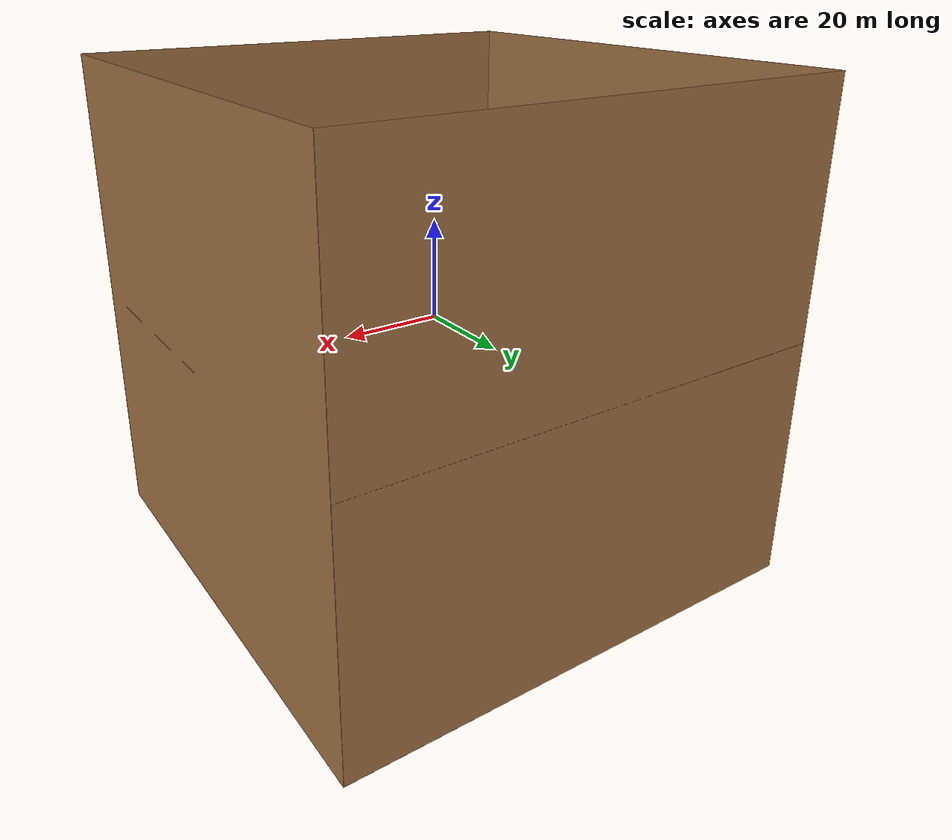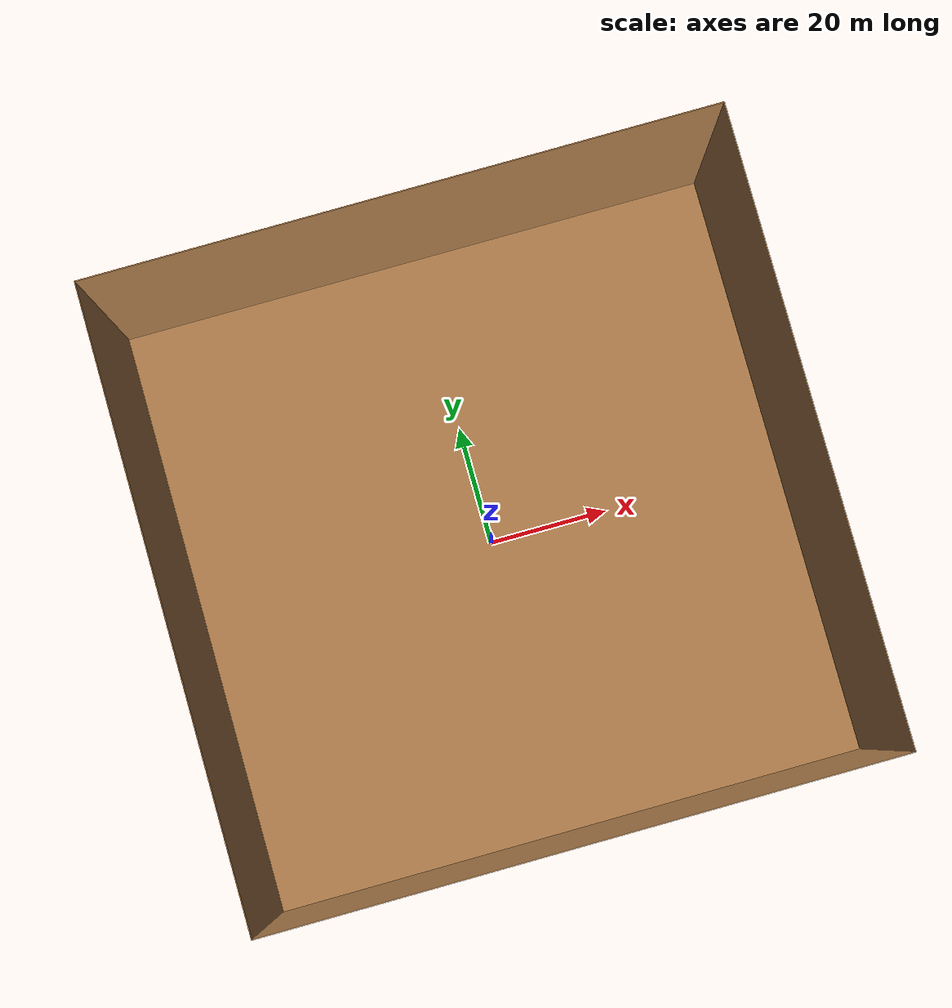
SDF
<sdf version="1.6">
 <world name="default">
  <light name="sun0" type="directional">
   <pose>0 0 10 0 -0 0</pose>
   <diffuse>0.8 0.8 0.8 1</diffuse>
   <specular>0.1 0.1 0.1 1</specular>
   <attenuation>
    <range>1000</range>
    <constant>0.9</constant>
    <linear>0.01</linear>
    <quadratic>0.001</quadratic>
   </attenuation>
   <direction>-0.5 0.5 -1</direction>
  </light>
  <gravity>0 0 -9.8</gravity>
  <magnetic_field>6e-06 2.3e-05 -4.2e-05</magnetic_field>
  <atmosphere type="adiabatic"/>
  <physics name="default_physics" default="0" type="ode">
   <max_step_size>0.001</max_step_size>
   <real_time_factor>1</real_time_factor>
   <real_time_update_rate>1000</real_time_update_rate>
  </physics>
  <scene><ambient>0.4 0.4 0.4 1</ambient><background>0.7 0.7 0.7 1</background><shadows>1</shadows></scene>
  <spherical_coordinates>
   <surface_model>EARTH_WGS84</surface_model>
   <latitude_deg>0</latitude_deg>
   <longitude_deg>0</longitude_deg>
   <elevation>0</elevation>
   <heading_deg>0</heading_deg>
  </spherical_coordinates>
  <model name="big_room">
   <pose>0 0 -50 0 -0 0</pose>
   <link name="Floor_0">
    <visual name="Floor_0_Visual">
     <pose>0 0 0.05 0 -0 0</pose>
     <geometry><box><size>100.15 100.15 0.1</size></box></geometry>
     <material>
      <script><uri>file://media/materials/scripts/gazebo.material</uri><name>Gazebo/Wood</name></script>
      <ambient>1 1 1 1</ambient>
     </material>
    </visual>
    <pose>0 0 50 0 -0 0</pose>
   </link>
   <link name="Floor_1">
    <visual name="Floor_1_Visual">
     <pose>0 0 0.05 0 -0 0</pose>
     <geometry><box><size>100.15 100.15 0.1</size></box></geometry>
     <material>
      <script><uri>file://media/materials/scripts/gazebo.material</uri><name>Gazebo/Wood</name></script>
      <ambient>1 1 1 1</ambient>
     </material>
    </visual>
   </link>
   <link name="Wall_1">
    <visual name="Wall_1_Visual">
     <pose>0 0 50 0 -0 0</pose>
     <geometry><box><size>100.15 0.15 100.15</size></box></geometry>
     <material>
      <script><uri>file://media/materials/scripts/gazebo.material</uri><name>Gazebo/Wood</name></script>
      <ambient>1 1 1 1</ambient>
     </material>
    </visual>
    <pose>0 -50 0 0 -0 0</pose>
   </link>
   <link name="Wall_5">
    <visual name="Wall_5_Visual">
     <pose>0 0 50 0 -0 0</pose>
     <geometry><box><size>100.15 0.15 100.15</size></box></geometry>
     <material>
      <script><uri>file://media/materials/scripts/gazebo.material</uri><name>Gazebo/Wood</name></script>
      <ambient>1 1 1 1</ambient>
     </material>
    </visual>
    <pose>-50 0 0 0 -0 1.5708</pose>
   </link>
   <link name="Wall_7">
    <visual name="Wall_7_Visual">
     <pose>0 0 50 0 -0 0</pose>
     <geometry><box><size>100.15 0.15 100.15</size></box></geometry>
     <material>
      <script><uri>file://media/materials/scripts/gazebo.material</uri><name>Gazebo/Wood</name></script>
      <ambient>1 1 1 1</ambient>
     </material>
    </visual>
    <pose>0 50 0 0 -0 0</pose>
   </link>
   <link name="Wall_9">
    <visual name="Wall_9_Visual">
     <pose>0 0 50 0 -0 0</pose>
     <geometry><box><size>100.15 0.15 100.15</size></box></geometry>
     <material>
      <script><uri>file://media/materials/scripts/gazebo.material</uri><name>Gazebo/Wood</name></script>
      <ambient>1 1 1 1</ambient>
     </material>
    </visual>
    <pose>50 0 0 0 0 -1.5708</pose>
   </link>
   <static>1</static>
  </model>
 </world>
</sdf>
